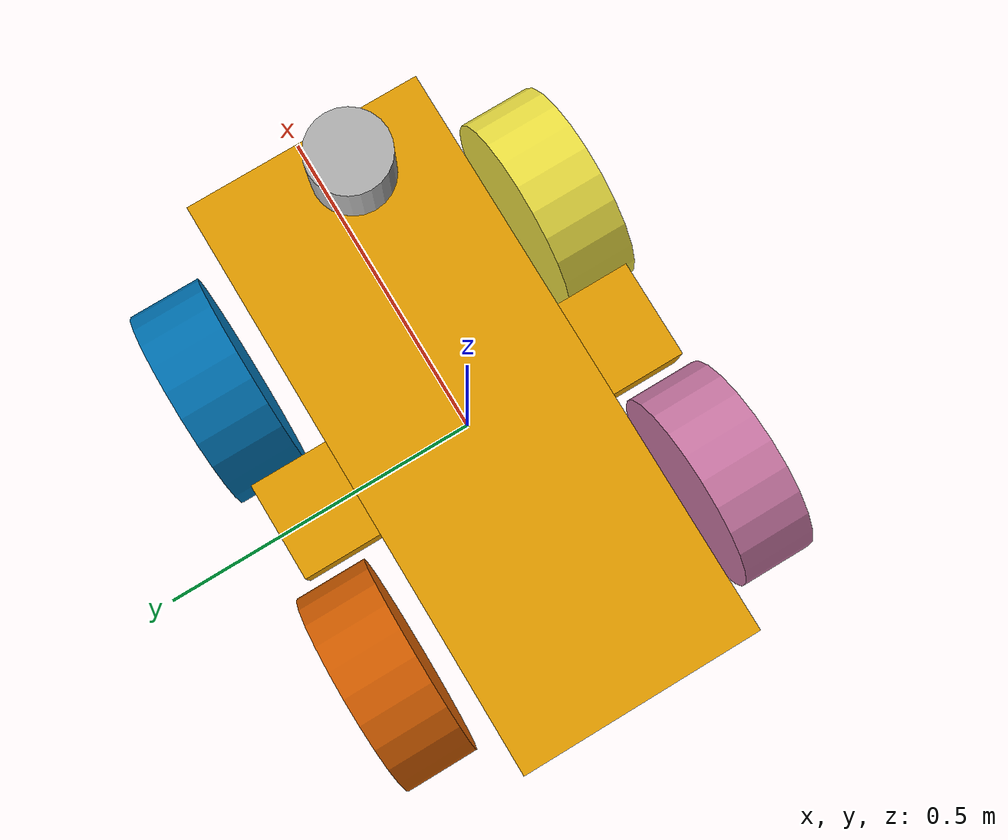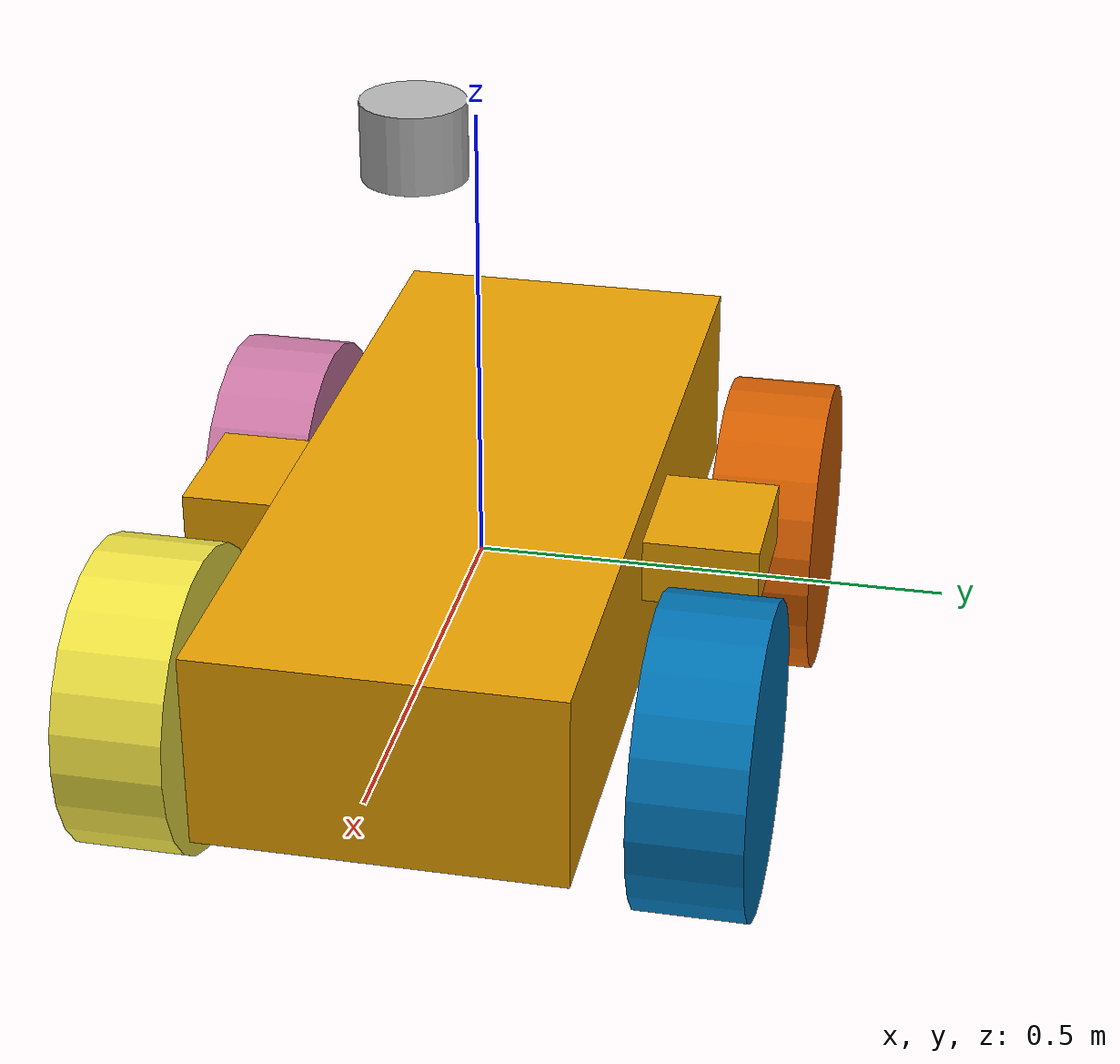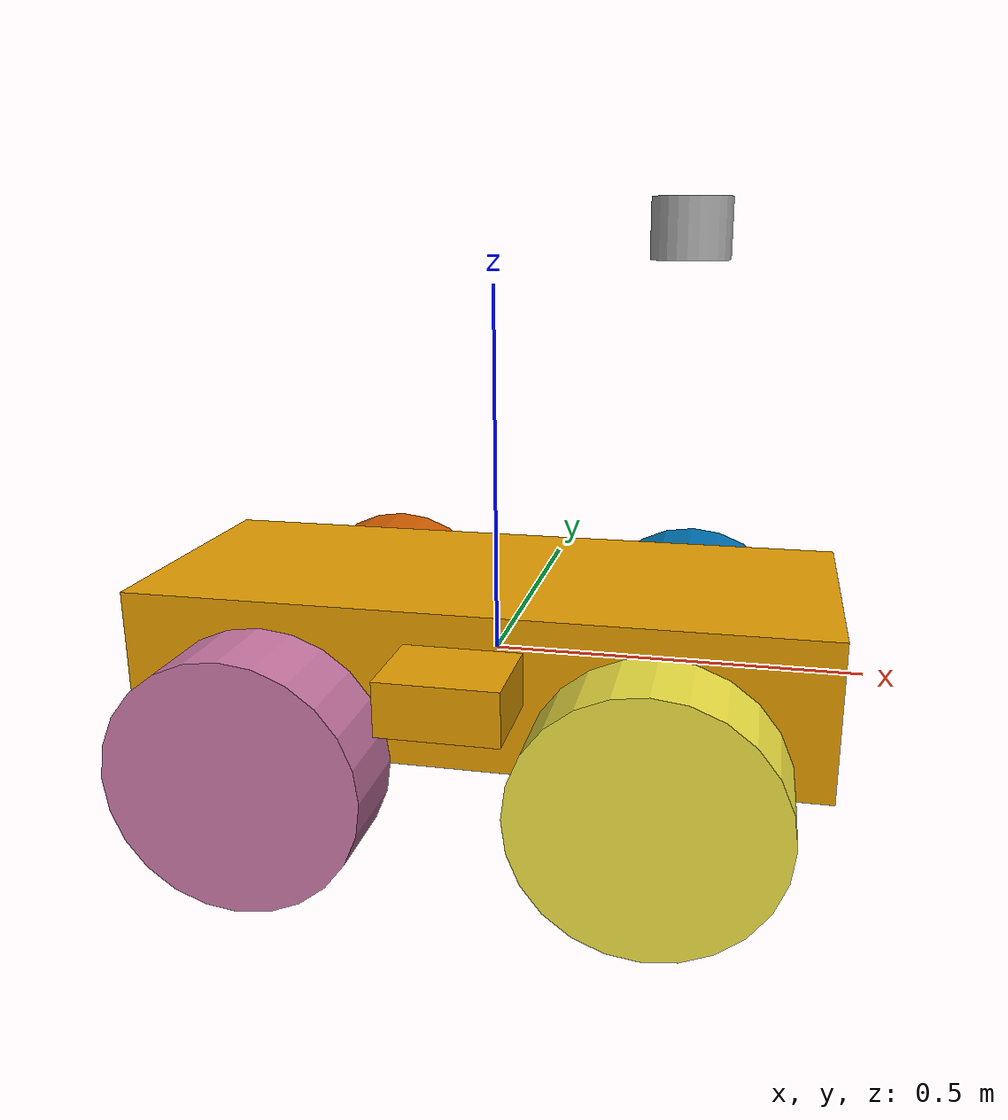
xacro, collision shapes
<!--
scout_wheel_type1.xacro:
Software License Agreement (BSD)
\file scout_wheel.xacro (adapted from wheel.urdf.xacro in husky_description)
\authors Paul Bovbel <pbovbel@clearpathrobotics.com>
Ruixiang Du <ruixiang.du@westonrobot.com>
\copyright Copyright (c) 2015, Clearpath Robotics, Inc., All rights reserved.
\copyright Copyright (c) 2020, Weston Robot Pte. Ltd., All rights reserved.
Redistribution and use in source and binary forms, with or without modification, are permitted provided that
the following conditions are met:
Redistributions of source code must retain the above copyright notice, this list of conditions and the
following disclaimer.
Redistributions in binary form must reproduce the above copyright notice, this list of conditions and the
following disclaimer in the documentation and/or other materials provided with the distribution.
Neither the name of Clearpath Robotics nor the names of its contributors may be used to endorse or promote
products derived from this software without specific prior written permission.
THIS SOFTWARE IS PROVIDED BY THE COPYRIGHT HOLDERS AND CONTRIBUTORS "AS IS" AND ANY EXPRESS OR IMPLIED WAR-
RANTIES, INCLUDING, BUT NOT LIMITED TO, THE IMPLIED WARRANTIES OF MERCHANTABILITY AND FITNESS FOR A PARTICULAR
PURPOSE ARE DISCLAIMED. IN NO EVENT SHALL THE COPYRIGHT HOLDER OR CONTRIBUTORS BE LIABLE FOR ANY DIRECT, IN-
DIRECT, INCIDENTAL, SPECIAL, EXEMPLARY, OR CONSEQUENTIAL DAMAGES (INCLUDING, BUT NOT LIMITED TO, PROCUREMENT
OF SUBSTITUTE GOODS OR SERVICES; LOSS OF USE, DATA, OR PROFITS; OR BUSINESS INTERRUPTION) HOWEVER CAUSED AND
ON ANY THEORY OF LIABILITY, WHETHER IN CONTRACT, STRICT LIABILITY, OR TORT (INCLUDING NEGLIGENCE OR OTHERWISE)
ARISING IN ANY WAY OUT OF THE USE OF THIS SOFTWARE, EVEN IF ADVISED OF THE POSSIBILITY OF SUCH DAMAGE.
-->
<?xml version="1.0"?>

<robot name="scout_v2"
    xmlns:xacro="http://ros.org/wiki/xacro">

    <xacro:arg name="robot_namespace" default="/" />

    <xacro:include filename="$(find scout_description)/urdf/scout_wheel_type1.xacro" />
    <xacro:include filename="$(find scout_description)/urdf/scout_wheel_type2.xacro" />

    <!-- Variables -->
    <xacro:property name="M_PI" value="3.14159"/>

    <!-- Vehicle Geometries -->
    <xacro:property name="base_x_size" value="0.9250000" />
    <xacro:property name="base_y_size" value="0.380000" />
    <xacro:property name="base_z_size" value="0.210000" />

    <xacro:property name="wheelbase" value="0.498" />
    <xacro:property name="track" value="0.58306" />
    <xacro:property name="wheel_vertical_offset" value="-0.0702" />

    <xacro:property name="wheel_length" value="1.1653e-01" />
    <xacro:property name="wheel_radius" value="1.6459e-01" />

    <!-- Base link -->
    <link name="base_link">
        <visual>
            <origin xyz="0 0 0" rpy="0 0 0" />
            <geometry>
                <mesh filename="file://$(find scout_description)/meshes/base_link.dae" />
            </geometry>
        </visual>
        <collision>
            <origin xyz="0 0 0.008" rpy="0 0 0" />
            <geometry>
                <box size="${base_x_size} ${base_y_size} ${base_z_size}"/>
            </geometry>
        </collision>
        <collision>
            <origin xyz="0 0 ${base_z_size/6}" rpy="0 0 0" />
            <geometry>
                <box size="${base_x_size/6} ${base_y_size*1.65} ${base_z_size/3}"/>
            </geometry>
        </collision>
    </link>

    <link name="base_footprint"/>

    <joint name="base_footprint_joint" type="fixed">
        <origin xyz="0 0 ${wheel_vertical_offset - wheel_radius}" rpy="0 0 0" />
        <parent link="base_link" />
        <child link="base_footprint" />
    </joint>

    <link name="inertial_link">
        <inertial>
            <mass value="40" />
            <origin xyz="0.0 0.0 0.0" />
            <inertia ixx="2.288641" ixy="0" ixz="0" iyy="5.103976" iyz="0" izz="3.431465" />
        </inertial>
    </link>

    <joint name="inertial_joint" type="fixed">
        <origin xyz="0 0 0" rpy="0 0 0" />
        <parent link="base_link" />
        <child link="inertial_link" />
    </joint>

    <!-- Scout wheel macros -->
    <!-- wheel labeled from 0 to 3, conter-clockwise, starting from front right wheel -->
    <!-- motor 1 and 2 (left side) are mechanically installed in a reversed direction -->
    <xacro:scout_wheel_type1 wheel_prefix="front_right">
        <origin xyz="${wheelbase/2} ${-track/2} ${wheel_vertical_offset}" rpy="3.14 0 0" />
    </xacro:scout_wheel_type1>
    <xacro:scout_wheel_type2 wheel_prefix="front_left">
        <origin xyz="${wheelbase/2} ${track/2} ${wheel_vertical_offset}" rpy="0 0 0" />
    </xacro:scout_wheel_type2>
    <xacro:scout_wheel_type1 wheel_prefix="rear_left">
        <origin xyz="${-wheelbase/2} ${track/2} ${wheel_vertical_offset}" rpy="0 0 0" />
    </xacro:scout_wheel_type1>
    <xacro:scout_wheel_type2 wheel_prefix="rear_right">
        <origin xyz="${-wheelbase/2} ${-track/2} ${wheel_vertical_offset}" rpy="3.14 0 0" />
    </xacro:scout_wheel_type2>

<link name="rslidar">
  <inertial>
    <origin xyz="0 0 0" rpy="0 0 0"/>
    <mass value="0.125"/>
    <inertia ixx="0.001"  ixy="0"  ixz="0" iyy="0.001" iyz="0" izz="0.001" />
  </inertial>

  <collision>
    <origin xyz="0 0 0" rpy="0 0 0"/>
    <geometry>
       <cylinder radius="0.05" length="0.075"/>
    </geometry>
  </collision>

  <visual>
    <origin xyz="0 0 0" rpy="0 0 0"/>
    <geometry>
       <cylinder radius="0.05" length="0.075"/>
    </geometry>
  </visual>
</link>

<joint name="lidar_joint" type="fixed">
  <parent link="base_link"/>
  <child link="rslidar"/>
  <origin xyz="0.25 0 0.57" rpy="0 0 0"/>
</joint>

<link name="gps_link">
  <inertial>
    <origin xyz="0 0 0" rpy="0 0 0"/>
    <mass value="0.125"/>
    <inertia ixx="0.001"  ixy="0"  ixz="0" iyy="0.001" iyz="0" izz="0.001" />
  </inertial>

  <collision>
    <origin xyz="0 0 0" rpy="0 0 0"/>
    <geometry>
       <cylinder radius="0.025" length="0.025"/>
    </geometry>
  </collision>

  <visual>
    <origin xyz="0 0 0" rpy="0 0 0"/>
    <geometry>
       <cylinder radius="0.025" length="0.025"/>
    </geometry>
  </visual>
</link>

<joint name="gps_joint" type="fixed">
  <parent link="base_link"/>
  <child link="gps_link"/>
  <origin xyz="0.25 0 0.57" rpy="0 0 0"/>
</joint>

<link name="imu_link">
  <inertial>
    <origin xyz="0 0 0" rpy="0 0 0"/>
    <mass value="0.125"/>
    <inertia ixx="0.001"  ixy="0"  ixz="0" iyy="0.001" iyz="0" izz="0.001" />
  </inertial>

  <collision>
    <origin xyz="0 0 0" rpy="0 0 0"/>
    <geometry>
       <cylinder radius="0.025" length="0.025"/>
    </geometry>
  </collision>

  <visual>
    <origin xyz="0 0 0" rpy="0 0 0"/>
    <geometry>
       <cylinder radius="0.025" length="0.025"/>
    </geometry>
  </visual>
</link>

<joint name="imu_joint" type="fixed">
  <parent link="base_link"/>
  <child link="imu_link"/>
  <origin xyz="0.25 0 0.57" rpy="0 0 0"/>
</joint>

</robot>

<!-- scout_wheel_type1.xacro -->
<robot xmlns:xacro="http://ros.org/wiki/xacro" name="scout_wheel">

    <xacro:macro name="scout_wheel_type1" params="wheel_prefix *joint_pose">
        <link name="${wheel_prefix}_wheel_link">
            <inertial>
                <mass value="8" />
                <origin xyz="0 0 0" />
                <inertia ixx="0.1171" ixy="0" ixz="0" iyy="0.1361" iyz="0" izz="0.1171" />
            </inertial>
            <visual>
                <origin xyz="0 0 0" rpy="0 0 0" />
                <geometry>
                    <mesh filename="file://$(find scout_description)/meshes/wheel_type1.dae" />
                </geometry>
            </visual>
            <collision>
                <origin xyz="0 0 0" rpy="${M_PI/2} 0 0" />
                <geometry>
                    <cylinder length="${wheel_length}" radius="${wheel_radius}" />
                </geometry>
                     <contact>
                         <ode>
                        <min_depth>0.001</min_depth>
                         </ode>
                    </contact>
            </collision>
        </link>

        <joint name="${wheel_prefix}_wheel" type="continuous">
            <parent link="base_link"/>
            <child link="${wheel_prefix}_wheel_link"/>
            <xacro:insert_block name="joint_pose"/>
            <axis xyz="0 -1 0" rpy="0 0 0" />
            <dynamics damping="0.0" friction="20"/>
        </joint>
    </xacro:macro>

</robot>

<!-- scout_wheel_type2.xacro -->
<robot xmlns:xacro="http://ros.org/wiki/xacro" name="scout_wheel">

    <xacro:macro name="scout_wheel_type2" params="wheel_prefix *joint_pose">
        <link name="${wheel_prefix}_wheel_link">
            <inertial>
                <mass value="8" />
                <origin xyz="0 0 0" />
                <inertia ixx="0.1171" ixy="0" ixz="0" iyy="0.1361" iyz="0" izz="0.1171" />
            </inertial>
            <visual>
                <origin xyz="0 0 0" rpy="0 0 0" />
                <geometry>
                    <mesh filename="file://$(find scout_description)/meshes/wheel_type1.dae" />
                </geometry>
            </visual>
            <collision>
                <origin xyz="0 0 0" rpy="${M_PI/2} 0 0" />
                <geometry>
                    <cylinder length="${wheel_length}" radius="${wheel_radius}" />
                </geometry>
                    <contact>
                         <ode>
                        <min_depth>0.001</min_depth>
                         </ode>
                    </contact>
            </collision>
        </link>

        <joint name="${wheel_prefix}_wheel" type="continuous">
            <parent link="base_link"/>
            <child link="${wheel_prefix}_wheel_link"/>
            <xacro:insert_block name="joint_pose"/>
            <axis xyz="0 1 0" rpy="0 0 0" />
            <dynamics damping="0.0" friction="20"/>
        </joint>
    </xacro:macro>

</robot>
